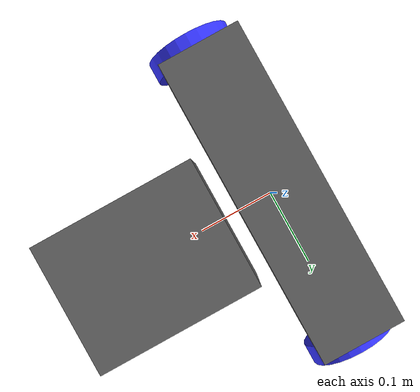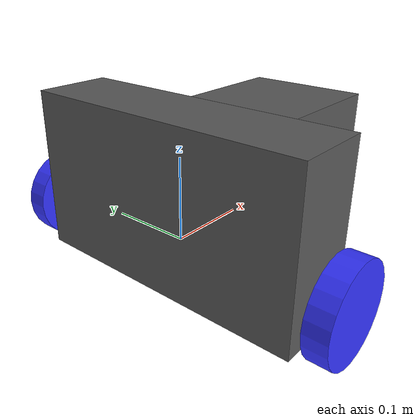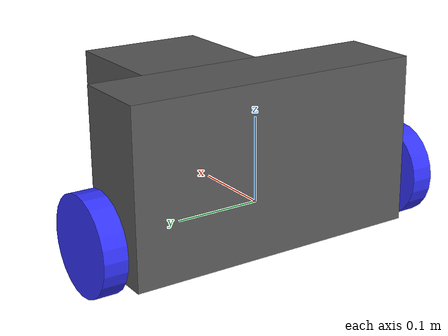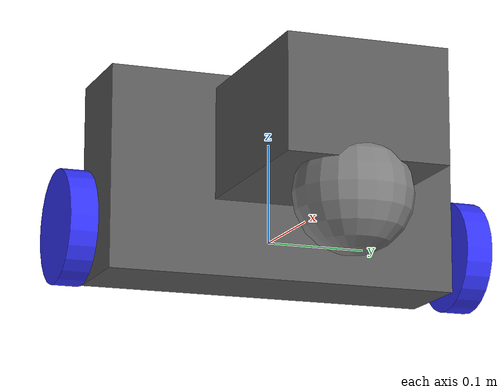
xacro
<?xml version="1.0"?>
<robot xmlns:xacro="http://www.ros.org/wiki/xacro" >

    <xacro:include filename="inertial_macros.xacro"/>

    <!-- Gazebo Fortress mapea (URDF-SDF) colores a diffuse/ambient -->

    <!-- BASE LINK -->

    <link name="base_link">

    </link>

    <!-- BASE_FOOTPRINT LINK -->

    <joint name="base_footprint_joint" type="fixed">
        <parent link="base_link"/>
        <child link="base_footprint"/>
        <origin xyz="0 0 0" rpy="0 0 0"/>
    </joint>

    <link name="base_footprint">
    </link>

    <!-- CHASSIS LINK -->

    <joint name="chassis1_joint" type="fixed">
        <parent link="base_link"/>
        <child link="chassis1"/>
        <origin xyz="-0.047 0 -0.046"/>
    </joint>

    <link name="chassis1">
        <visual>
            <origin xyz="0.047 0 0.1"/>
            <geometry>
                <box size="0.094 0.354 0.2"/>
            </geometry>
            <material name="gray">
                <color rgba="0.35 0.35 0.35 1"/>
            </material>
        </visual>
        <collision>
            <origin xyz="0.047 0 0.1"/>
            <geometry>
                <box size="0.094 0.354 0.2"/>
            </geometry>
        </collision>
        <xacro:inertial_box mass="0.6" x="0.094" y="0.354" z="0.2">
            <origin xyz="0.05 0 0.1" rpy="0 0 0"/>
        </xacro:inertial_box>
    </link>

    <joint name="chassis2_joint" type="fixed">
        <parent link="base_link"/>
        <child link="chassis2"/>
        <origin xyz="0.065 0 0.024"/>
    </joint>

    <link name="chassis2">
        <visual>
            <origin xyz="0.098 0 0.055"/>
            <geometry>
                <box size="0.196 0.156 0.11"/>
            </geometry>
            <material name="gray">
                <color rgba="0.35 0.35 0.35 1"/>
            </material>
        </visual>
        <collision>
            <origin xyz="0.098 0 0.055"/>
            <geometry>
                <box size="0.22 0.22 0.12"/>
            </geometry>
        </collision>
        <xacro:inertial_box mass="0.4" x="0.22" y="0.22" z="0.12">
            <origin xyz="0.098 0 0.055" rpy="0 0 0"/>
        </xacro:inertial_box>
    </link>

    <!-- LEFT WHEEL LINK -->

    <joint name="left_wheel_joint" type="continuous">
        <parent link="base_link"/>
        <child link="left_wheel"/>
        <origin xyz="0 0.204 0" rpy="-${pi/2} 0 0" />
        <axis xyz="0 0 1"/>
    </joint>

    <link name="left_wheel">
        <visual>
            <geometry>
                <cylinder radius="0.056" length="0.027"/>
            </geometry>
            <material name="blue">
                <color rgba="0.2 0.2 1 1"/>
            </material>
        </visual>
        <collision>
            <geometry>
                <cylinder radius="0.056" length="0.027"/>
            </geometry>
        </collision>
        <xacro:inertial_cylinder mass="0.05" length="0.027" radius="0.056">
            <origin xyz="0 0 0" rpy="0 0 0"/>
        </xacro:inertial_cylinder>
    </link>

    <!-- RIGHT WHEEL LINK -->

    <joint name="right_wheel_joint" type="continuous">
        <parent link="base_link"/>
        <child link="right_wheel"/>
        <origin xyz="0 -0.204 0" rpy="${pi/2} 0 0" />
        <axis xyz="0 0 -1"/>
    </joint>

    <link name="right_wheel">
        <visual>
            <geometry>
                <cylinder radius="0.056" length="0.027"/>
            </geometry>
            <material name="blue">
                <color rgba="0.2 0.2 1 1"/>
            </material>
        </visual>
        <collision>
            <geometry>
                <cylinder radius="0.056" length="0.027"/>
            </geometry>
        </collision>
        <xacro:inertial_cylinder mass="0.05" length="0.027" radius="0.056">
            <origin xyz="0 0 0" rpy="0 0 0"/>
        </xacro:inertial_cylinder>
    </link>

    <!-- CASTER WHEEL LINK -->

    <joint name="caster_wheel_joint" type="fixed">
        <parent link="chassis2"/>
        <child link="caster_wheel"/>
        <origin xyz="0.156 0 -0.024"/>
    </joint>

    <link name="caster_wheel">
        <visual>
            <geometry>
                <sphere radius="0.056"/>
            </geometry>
            <material name="white">
                <color rgba="0.5 0.5 0.5 1"/>
            </material>
        </visual>
        <collision>
            <geometry>
                <sphere radius="0.056"/>
            </geometry>
        </collision>
        <xacro:inertial_sphere mass="0.02" radius="0.056">
            <origin xyz="0 0 0" rpy="0 0 0"/>
        </xacro:inertial_sphere>
    </link>

    <gazebo reference="caster_wheel">
        <mu1>0.001</mu1>
        <mu2>0.001</mu2>
    </gazebo>

</robot>
